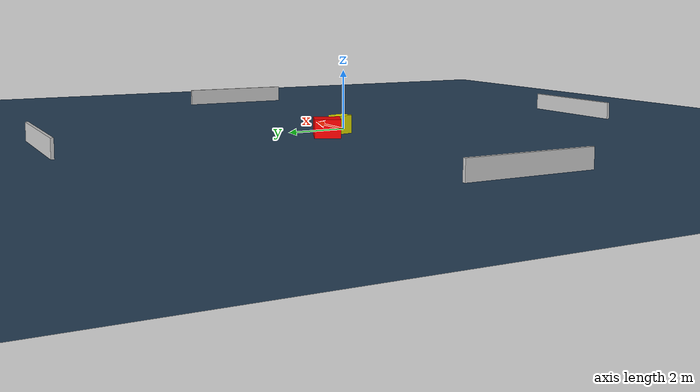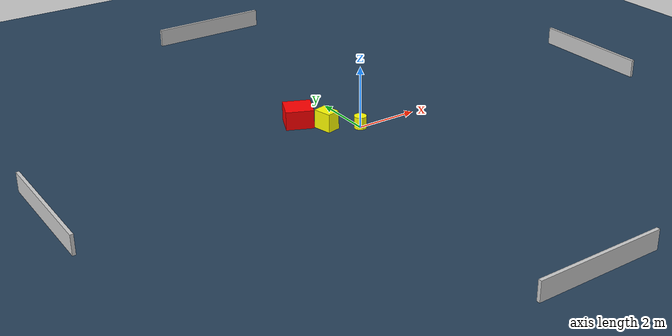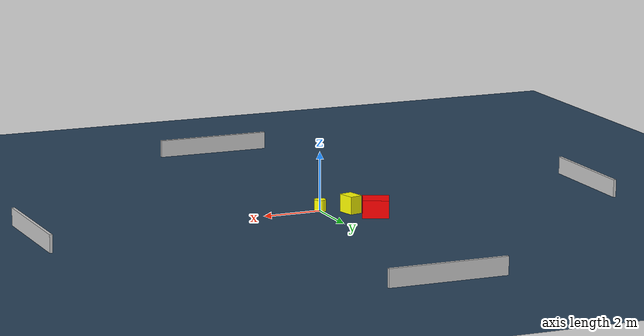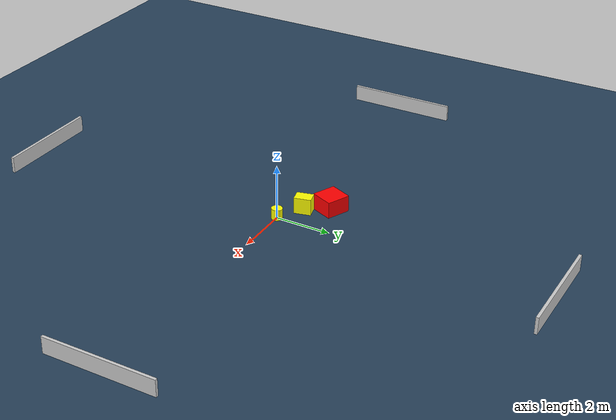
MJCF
<?xml version="1.0" ?>
<mujoco model="generated_environment">
  <option timestep="0.01" integrator="RK4" cone="elliptic"/>
  <default>
    <geom density="1"/>
  </default>
  <asset>
    <texture builtin="gradient" height="3072" name="skybox" rgb1="0.3 0.5 0.7" rgb2="0 0 0" type="skybox" width="512"/>
    <texture builtin="checker" height="300" name="groundplane" rgb1="0.2 0.3 0.4" rgb2="0.1 0.2 0.3" type="2d" width="300"/>
    <material name="groundplane" reflectance="0.2" texrepeat="5 5" texture="groundplane"/>
  </asset>
  <worldbody>
    <light dir="0 0 -1" directional="true" pos="0 0 1.5"/>
    <geom condim="3" friction="0.5 0.005 0.001" material="groundplane" name="floor" pos="0 0 0" size="0 0 0.05" type="plane"/>
    <body name="walls">
      <geom name="wall_1" condim="4" pos="-10.0 0.0 0.3" rgba="0.800000011920929 0.800000011920929 0.800000011920929 1.0" size="0.05 2.0 0.3" type="box"/>
      <geom name="wall_2" condim="4" pos="10.0 0.0 0.3" rgba="0.800000011920929 0.800000011920929 0.800000011920929 1.0" size="0.05 2.0 0.3" type="box"/>
      <geom name="wall_3" condim="4" pos="0.0 -10.0 0.3" rgba="0.800000011920929 0.800000011920929 0.800000011920929 1.0" size="2.0 0.05 0.3" type="box"/>
      <geom name="wall_4" condim="4" pos="0.0 10.0 0.3" rgba="0.800000011920929 0.800000011920929 0.800000011920929 1.0" size="2.0 0.05 0.3" type="box"/>
    </body>
    <body name="robot">
      <joint name="joint_x" type="slide" pos="0 0 0" axis="1 0 0"/>
      <joint name="joint_y" type="slide" pos="0 0 0" axis="0 1 0"/>
      <geom name="robot" type="cylinder" pos="0.0 0.0 0.2" size="0.2 0.2 0.0" mass="5.0" friction="1.0 0.005 0.0001" condim="4" rgba="1.0 1.0 0.0 1.0"/>
    </body>
    <body name="obstacle_1_movable">
      <geom name="obstacle_1_movable" condim="4" pos="-0.8700870497140393 0.5679233437625546 0.3" euler="0 0 283.53004577524933" friction="0.0 0.005 0.001" rgba="1.0 1.0 0.0 1.0" size="0.30417230107129745 0.2201793209095504 0.3" type="box" mass="0.1"/>
      <joint type="free"/>
    </body>
    <body name="obstacle_2_static">
      <geom name="obstacle_2_static" condim="4" pos="-1.4308560552963718 1.3317196098522133 0.3" euler="0 0 66.44829783310196" friction="0.0 0.005 0.001" rgba="1.0 0.0 0.0 1.0" size="0.4239548225208297 0.4401596253432927 0.3" type="box"/>
    </body>
  </worldbody>
  <actuator>
    <motor name="actuator_x" joint="joint_x" gear="1" ctrlrange="-1 1"/>
    <motor name="actuator_y" joint="joint_y" gear="1" ctrlrange="-1 1"/>
  </actuator>
</mujoco>
